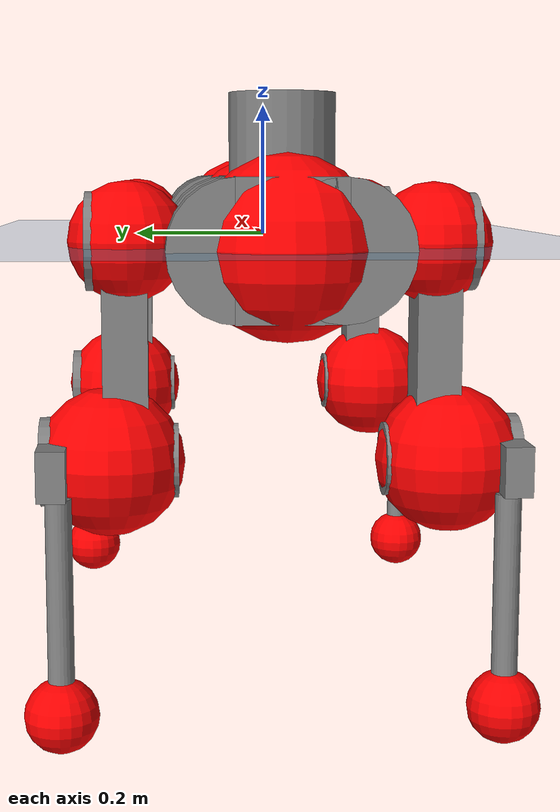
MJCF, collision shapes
<mujoco model="anymal_c">
  <compiler angle="radian" assetdir="assets" balanceinertia="true" inertiafromgeom="false"/>

  <option timestep="0.005" density="1.2" viscosity="2e-05"/>

  <size nkey="1"/>

  <visual>
    <quality shadowsize="8192"/>
    <map shadowclip="0.5"/>
  </visual>

  <default>
    <default class="/">
      <material specular="0" shininess="0.25"/>
      <geom contype="0" conaffinity="0" group="1" solref="-1000 -80"/>
      <site size="0.01 0.005 0.005" group="5"/>
      <general forcelimited="true" forcerange="-80 80" biastype="affine" gainprm="80" biasprm="0 -80 -2"/>
      <default class="anymal_c">
        <joint armature="0.01" damping="0.01" frictionloss="0.1"/>
        <default class="visual">
          <geom type="mesh" group="2"/>
          <default class="visual_zflip"/>
        </default>
        <default class="collision">
          <geom type="cylinder" group="3"/>
          <default class="foot">
            <geom size="0.03 0 0" type="sphere" condim="6" priority="1" friction="0.8 0.02 0.01" solimp="0.015 1 0.03"/>
          </default>
        </default>
      </default>
      <default class="reward_collision_sphere">
        <geom group="5" rgba="1 0 0 1"/>
      </default>
    </default>
  </default>

  <asset>
    <texture type="skybox" colorspace="auto" name="//unnamed_texture_0" builtin="gradient" rgb1="0.95 0.95 0.95" rgb2="0.95 0.95 0.95" width="100" height="600"/>
    <texture type="2d" colorspace="auto" name="texplane" builtin="checker" rgb1="0.345 0.575 0.748" rgb2="0.345 0.575 0.748" markrgb="1 1 1" width="512" height="512"/>
    <texture type="2d" colorspace="linear" name="base" file="base.png"/>
    <texture type="2d" colorspace="linear" name="top_shell" file="top_shell.png"/>
    <texture type="2d" colorspace="linear" name="bottom_shell" file="bottom_shell.png"/>
    <texture type="2d" colorspace="linear" name="remote" file="remote.png"/>
    <texture type="2d" colorspace="linear" name="hatch" file="hatch.png"/>
    <texture type="2d" colorspace="linear" name="handle" file="handle.png"/>
    <texture type="2d" colorspace="linear" name="face" file="face.png"/>
    <texture type="2d" colorspace="linear" name="battery" file="battery.png"/>
    <texture type="2d" colorspace="linear" name="lidar_cage" file="lidar_cage.png"/>
    <texture type="2d" colorspace="linear" name="depth_camera" file="depth_camera.png"/>
    <texture type="2d" colorspace="linear" name="wide_angle_camera" file="wide_angle_camera.png"/>
    <texture type="2d" colorspace="linear" name="lidar" file="lidar.png"/>
    <texture type="2d" colorspace="linear" name="drive" file="drive.png"/>
    <texture type="2d" colorspace="linear" name="hip_l" file="hip_l.png"/>
    <texture type="2d" colorspace="linear" name="shank_l" file="shank_l.png"/>
    <texture type="2d" colorspace="linear" name="foot" file="foot.png"/>
    <texture type="2d" colorspace="linear" name="thigh" file="thigh.png"/>
    <texture type="2d" colorspace="linear" name="shank_r" file="shank_r.png"/>
    <texture type="2d" colorspace="linear" name="hip_r" file="hip_r.png"/>
    <material name="MatPlane" class="/" texture="texplane" texuniform="true" texrepeat="2 2" specular="0.9" shininess="0.5"/>
    <material name="black_plastic" class="/" rgba="0.007 0.007 0.007 1"/>
    <material name="green" class="/" rgba="0.052 0.178 0.033 1"/>
    <material name="red" class="/" rgba="0.178 0.006 0.005 1"/>
    <material name="yellow" class="/" rgba="0.178 0.119 0.006 1"/>
    <material name="lwl" class="/" rgba="0.8 0.8 0.8 1"/>
    <material name="base" class="/" texture="base"/>
    <material name="top_shell" class="/" texture="top_shell"/>
    <material name="bottom_shell" class="/" texture="bottom_shell"/>
    <material name="hip_l" class="/" texture="hip_l"/>
    <material name="thigh" class="/" texture="thigh"/>
    <material name="shank_l" class="/" texture="shank_l"/>
    <material name="foot" class="/" texture="foot"/>
    <material name="hip_r" class="/" texture="hip_r"/>
    <material name="shank" class="/" texture="shank_r"/>
    <material name="hatch" class="/" texture="hatch"/>
    <material name="remote" class="/" texture="remote"/>
    <material name="handle" class="/" texture="handle"/>
    <material name="face" class="/" texture="face"/>
    <material name="depth_camera" class="/" texture="depth_camera"/>
    <material name="wide_angle_camera" class="/" texture="wide_angle_camera"/>
    <material name="battery" class="/" texture="battery"/>
    <material name="lidar_cage" class="/" texture="lidar_cage"/>
    <material name="lidar" class="/" texture="lidar"/>
    <material name="drive" class="/" texture="drive"/>
    <mesh name="base_0" class="/" file="base_0.obj"/>
    <mesh name="base_1" class="/" file="base_1.obj"/>
    <mesh name="base_2" class="/" file="base_2.obj"/>
    <mesh name="base_3" class="/" file="base_3.obj"/>
    <mesh name="base_4" class="/" file="base_4.obj"/>
    <mesh name="base_5" class="/" file="base_5.obj"/>
    <mesh name="top_shell" class="/" file="top_shell.obj"/>
    <mesh name="bottom_shell" class="/" file="bottom_shell.obj"/>
    <mesh name="remote" class="/" file="remote.obj"/>
    <mesh name="handle" class="/" file="handle.obj"/>
    <mesh name="face" class="/" file="face.obj"/>
    <mesh name="wide_angle_camera" class="/" file="wide_angle_camera.obj"/>
    <mesh name="depth_camera" class="/" file="depth_camera.obj"/>
    <mesh name="battery" class="/" file="battery.obj"/>
    <mesh name="lidar_cage" class="/" file="lidar_cage.obj"/>
    <mesh name="lidar" class="/" file="lidar.obj"/>
    <mesh name="drive" class="/" file="drive.obj"/>
    <mesh name="hip_l" class="/" file="hip_l.obj"/>
    <mesh name="thigh" class="/" file="thigh.obj"/>
    <mesh name="shank_l" class="/" file="shank_l.obj"/>
    <mesh name="foot" class="/" file="foot.obj"/>
    <mesh name="hip_r" class="/" file="hip_r.obj"/>
    <mesh name="hatch" class="/" file="hatch.obj"/>
    <mesh name="shank_r" class="/" file="shank_r.obj"/>
  </asset>

  <worldbody>
    <geom name="floor" class="/" size="100 100 0.125" type="plane" group="0" material="MatPlane"/>
    <light name="toplight_shadow" class="/" pos="0 0 5" dir="0.0990148 0.0990148 -0.990148" type="directional" ambient="0.04 0.04 0.04" diffuse="0.55 0.55 0.55" specular="0.12 0.12 0.12"/>
    <light name="toplight_fill" class="/" pos="0 0 5" dir="0.0990148 0.0990148 -0.990148" type="directional" castshadow="false" ambient="0.04 0.04 0.04" diffuse="0.3 0.3 0.3" specular="0.08 0.08 0.08"/>
    <body name="trunk" childclass="anymal_c" pos="-0.000174241 0.000877669 -2.9414e-05" quat="1 0.000136035 4.22826e-05 0.000294562">
      <inertial pos="0.00189318 0.000137008 0.0513074" quat="0.499916 0.499762 0.500263 0.50006" mass="19.8566" diaginertia="0.838516 0.437938 0.265225"/>
      <joint name="//unnamed_joint_0" type="free" armature="0" damping="0" frictionloss="0"/>
      <geom name="//unnamed_geom_1" class="visual" material="green" mesh="base_0"/>
      <geom name="//unnamed_geom_2" class="visual" material="yellow" mesh="base_1"/>
      <geom name="//unnamed_geom_3" class="visual" material="red" mesh="base_2"/>
      <geom name="//unnamed_geom_4" class="visual" material="black_plastic" mesh="base_3"/>
      <geom name="//unnamed_geom_5" class="visual" material="lwl" mesh="base_4"/>
      <geom name="//unnamed_geom_6" class="visual" material="base" mesh="base_5"/>
      <geom name="trunk_1" class="collision" size="0.293034 0.0707323 0.0909416" type="box"/>
      <geom name="trunk_2" class="collision" size="0.0909416 0.0732585" pos="0.229889 0.0652788 0" quat="0.707107 0 0.707107 0"/>
      <geom name="trunk_3" class="collision" size="0.0909416 0.0732585" pos="-0.229889 0.0652788 0" quat="0.707107 0 0.707107 0"/>
      <geom name="trunk_4" class="collision" size="0.0909416 0.0732585" pos="0.229889 -0.0652788 0" quat="0.707107 0 0.707107 0"/>
      <geom name="trunk_5" class="collision" size="0.0909416 0.0732585" pos="-0.229889 -0.0652788 0" quat="0.707107 0 0.707107 0"/>
      <geom name="//unnamed_geom_12" class="visual" material="top_shell" mesh="top_shell"/>
      <geom name="//unnamed_geom_13" class="visual" material="bottom_shell" mesh="bottom_shell"/>
      <geom name="//unnamed_geom_14" class="visual" material="remote" mesh="remote"/>
      <geom name="//unnamed_geom_15" class="visual" material="handle" mesh="handle"/>
      <geom name="//unnamed_geom_16" class="visual" pos="0.438111 0 0" quat="1 0 0 0" material="face" mesh="face"/>
      <geom name="trunk_6" class="collision" size="0.0555754 0.0707323 0.0909416" pos="0.496244 0 0" type="box"/>
      <geom name="//unnamed_geom_18" class="collision" size="0.0909416 0.0555754" pos="0.496244 0.0652788 0" quat="0.707107 0 0.707107 0"/>
      <geom name="//unnamed_geom_19" class="collision" size="0.0909416 0.0555754" pos="0.496244 -0.0652788 0" quat="0.707107 0 0.707107 0"/>
      <geom name="//unnamed_geom_20" class="visual" pos="0.487946 0 -0.0303078" quat="0.965926 0 0.258819 0" material="depth_camera" mesh="depth_camera"/>
      <geom name="//unnamed_geom_21" class="visual" pos="0.542222 0 0.0155968" material="wide_angle_camera" mesh="wide_angle_camera"/>
      <geom name="//unnamed_geom_22" class="visual_zflip" pos="-0.438111 0 0" quat="0 0 0 1" material="face" mesh="face"/>
      <geom name="trunk_7" class="collision" size="0.0555754 0.0707323 0.0909416" pos="-0.496244 0 0" quat="0 0 0 1" type="box"/>
      <geom name="//unnamed_geom_24" class="collision" size="0.0909416 0.0555754" pos="-0.496244 -0.0652788 0" quat="0 -0.707107 0 0.707107"/>
      <geom name="//unnamed_geom_25" class="collision" size="0.0909416 0.0555754" pos="-0.496244 0.0652788 0" quat="0 -0.707107 0 0.707107"/>
      <geom name="//unnamed_geom_26" class="visual" pos="-0.487946 0 -0.0303078" quat="0 -0.258819 0 0.965926" material="depth_camera" mesh="depth_camera"/>
      <geom name="//unnamed_geom_27" class="visual_zflip" pos="-0.542222 0 0.0155968" quat="0 0 0 1" material="wide_angle_camera" mesh="wide_angle_camera"/>
      <geom name="//unnamed_geom_28" class="visual" material="battery" mesh="battery"/>
      <geom name="//unnamed_geom_29" class="visual" pos="0 0.06967 0.030381" quat="0.683013 -0.183013 0.183013 0.683013" material="depth_camera" mesh="depth_camera"/>
      <geom name="//unnamed_geom_30" class="visual" pos="0 -0.06967 0.030381" quat="0.683013 0.183013 0.183013 -0.683013" material="depth_camera" mesh="depth_camera"/>
      <geom name="//unnamed_geom_31" class="visual" pos="-0.384735 0 0.0765773" quat="1 0 0 0" material="lidar_cage" mesh="lidar_cage"/>
      <geom name="trunk_8" class="collision" size="0.0707323 0.0606277" pos="-0.384735 0 0.139089"/>
      <geom name="//unnamed_geom_33" class="visual" pos="-0.384735 -4.88769e-05 0.148154" quat="0.707107 0 0 -0.707107" material="lidar" mesh="lidar"/>
      <geom name="//unnamed_geom_34" class="visual" pos="0.316983 0.0970245 -1.88568e-09" quat="0.258819 0.965926 0 0" material="drive" mesh="drive"/>
      <geom name="//unnamed_geom_35" class="visual" pos="0.316983 -0.0970245 1.88568e-09" quat="0.258819 -0.965926 0 0" material="drive" mesh="drive"/>
      <geom name="//unnamed_geom_36" class="visual" pos="-0.316983 0.0970245 1.88568e-09" quat="0 0 0.965926 -0.258819" material="drive" mesh="drive"/>
      <geom name="//unnamed_geom_37" class="visual" pos="-0.316983 -0.0970245 -1.88568e-09" quat="0 0 -0.965926 -0.258819" material="drive" mesh="drive"/>
      <geom name="//unnamed_geom_38" class="visual" pos="0.122608 0 0.0760564" quat="1 0 0 0" material="hatch" mesh="hatch"/>
      <geom name="//unnamed_geom_39" class="reward_collision_sphere" size="0.121255"/>
      <geom name="//unnamed_geom_40" class="reward_collision_sphere" size="0.121255" pos="0.475633 0 0"/>
      <geom name="//unnamed_geom_41" class="reward_collision_sphere" size="0.121255" pos="-0.475633 0 0"/>
      <site name="imu" pos="0.263773 0.00862845 0.0458355" size="0.0101046"/>
      <camera name="track" pos="0 -1.86511 0" quat="0.707107 0.707107 0 0" mode="trackcom"/>
      <camera name="ego_camera" pos="0.475633 0 -0.0416747" quat="-0.5 -0.5 0.5 0.5"/>
      <body name="LF_HIP" pos="0.317628 0.0980479 -0.000804838" quat="0.258807 0.965929 0.000131393 0.000120117">
        <inertial pos="0.059491 -0.0134671 -0.00791169" quat="-0.128686 0.709859 -0.135128 0.679176" mass="2.8581" diaginertia="0.00767743 0.0034541 0.0039865"/>
        <joint name="LF_HAA" pos="0 0 0" axis="0.999991 0.00328364 0.00273737" range="-0.714926 0.497092" armature="0.00972053" damping="0.0152659" frictionloss="0.100422"/>
        <geom name="//unnamed_geom_42" class="visual" pos="0 -0.000110926 1.82195e-05" quat="0.258819 -0.965926 0 0" material="hip_l" mesh="hip_l"/>
        <geom name="//unnamed_geom_43" class="visual" pos="0.0633121 -0.0751169 -0.0441773" quat="0.183013 -0.683013 0.683013 0.183013" material="drive" mesh="drive"/>
        <geom name="//unnamed_geom_44" class="collision" size="0.0505231 0.0707323" pos="0.0633121 -0.0111532 -0.0071941" quat="-0.353553 -0.612372 0.612372 -0.353553"/>
        <body name="LF_THIGH" pos="0.0636554 -0.0674913 -0.0435327" quat="0.183088 -0.682994 0.683002 0.183046">
          <inertial pos="0.0330098 8.25104e-05 -0.256191" quat="0.993314 -0.00472385 -0.0798224 0.0832645" mass="3.14281" diaginertia="0.0399816 0.0211726 0.00512362"/>
          <joint name="LF_HFE" pos="0 0 0" axis="0.999997 0.000888937 0.00246704" stiffness="0.00344425" range="-3.13215 3.12251" armature="0.00969565" damping="0.00589595" frictionloss="0.0986577"/>
          <geom name="//unnamed_geom_45" class="visual" pos="0.00247525 3.90041e-06 0" quat="0.707107 0 0 -0.707107" material="thigh" mesh="thigh"/>
          <geom name="//unnamed_geom_46" class="collision" size="0.06568 0.0404185" pos="0.0422785 0 0" quat="0.5 0.5 -0.5 -0.5"/>
          <geom name="//unnamed_geom_47" class="collision" size="0.0378923 0.0303139 0.142792" pos="0.0317089 0 -0.147231" quat="0.707107 0 0 -0.707107" type="box"/>
          <geom name="//unnamed_geom_48" class="visual" pos="0.106013 0 -0.296932" quat="1 0 0 0" material="drive" mesh="drive"/>
          <geom name="//unnamed_geom_49" class="collision" size="0.0505231 0.0707323" pos="0.032026 0 -0.296932" quat="0.707107 0 0.707107 0"/>
          <geom name="//unnamed_geom_50" class="reward_collision_sphere" size="0.080837" pos="0.0264241 0 0"/>
          <body name="LF_SHANK" pos="0.106137 -0.00025177 -0.297034" quat="1 -0.000394011 -0.0001512 0.000235371">
            <inertial pos="0.00496587 -0.0577076 -0.0832583" quat="0.993027 -0.115457 -0.00118733 -0.0237948" mass="0.610162" diaginertia="0.0133425 0.00646817 0.00138823"/>
            <joint name="LF_KFE" pos="0 0 0" axis="0.999997 -0.0016507 -0.00165056" stiffness="0.000103774" range="-3.13412 3.14977" armature="0.0104882" damping="0.00962642" frictionloss="0.101279"/>
            <geom name="//unnamed_geom_51" class="visual" pos="0.000807124 0.00430363 0" quat="0.707107 0 0 -0.707107" material="shank_l" mesh="shank_l"/>
            <geom name="LF_kfe_act" class="collision" size="0.0606277 0.0202092" pos="0.0211393 0 0" quat="0.5 0.5 -0.5 -0.5"/>
            <geom name="//unnamed_geom_53" class="collision" size="0.0581006 0.0341031 0.0191988" pos="0.0211393 -0.0536209 0" quat="0.5 0.5 -0.5 -0.5" type="box"/>
            <geom name="//unnamed_geom_54" class="visual" pos="0.0137932 -0.0806313 -0.35212" quat="0.382683 0 0 -0.92388" material="foot" mesh="foot"/>
            <geom name="LF_calf" class="collision" size="0.0176831 0.14273" pos="0.0137934 -0.0820182 -0.17606" quat="0.707107 0 0 -0.707107"/>
            <geom name="LF_foot" class="foot" size="0.0289358" pos="0.0137934 -0.0820182 -0.328678" quat="0.707107 0 0 -0.707107"/>
            <geom name="//unnamed_geom_57" class="reward_collision_sphere" size="0.101046" pos="-0.0528482 0 0"/>
            <geom name="//unnamed_geom_58" class="reward_collision_sphere" size="0.0505231" pos="0.0137934 -0.0820182 -0.328678"/>
            <site name="LF_foot" class="foot" pos="0.0137934 -0.0820182 -0.328678" quat="0.707107 0 0 -0.707107" size="0.0101046"/>
          </body>
        </body>
      </body>
      <body name="RF_HIP" pos="0.317447 -0.0976474 -0.000365872" quat="0.258805 -0.96593 7.95787e-05 -1.79151e-07">
        <inertial pos="0.0593504 0.0150033 -0.0087466" quat="0.135444 0.678931 0.127804 0.710193" mass="2.869" diaginertia="0.00763717 0.0034135 0.00403752"/>
        <joint name="RF_HAA" pos="0 0 0" axis="0.999999 -0.000430652 0.00162806" stiffness="0.00041009" range="-0.507427 0.726203" armature="0.00995554" damping="0.00993727" frictionloss="0.102284"/>
        <geom name="//unnamed_geom_59" class="visual" pos="0 0.000110925 1.82194e-05" quat="0.258819 0.965926 0 0" material="hip_r" mesh="hip_r"/>
        <geom name="//unnamed_geom_60" class="visual" pos="0.0633121 0.0751169 -0.0441773" quat="0.183013 0.683013 0.683013 -0.183013" material="drive" mesh="drive"/>
        <geom name="//unnamed_geom_61" class="collision" size="0.0505231 0.0707323" pos="0.0633121 0.0111532 -0.0071941" quat="-0.353553 0.612372 0.612372 0.353553"/>
        <body name="RF_THIGH" pos="0.0636808 0.0673817 -0.0445504" quat="0.18314 0.682927 0.683066 -0.183006">
          <inertial pos="0.0335118 -0.00043849 -0.256297" quat="0.992779 -0.00492196 -0.0807643 0.0885542" mass="3.13921" diaginertia="0.0397964 0.0210908 0.00516921"/>
          <joint name="RF_HFE" pos="0 0 0" axis="1 0.000417791 0.000226286" stiffness="0.00701132" range="-3.15042 3.13496" armature="0.0101273" damping="0.00990237" frictionloss="0.100298"/>
          <geom name="//unnamed_geom_62" class="visual" pos="0.00247525 3.90041e-06 0" quat="0.707107 0 0 -0.707107" material="thigh" mesh="thigh"/>
          <geom name="//unnamed_geom_63" class="collision" size="0.06568 0.0404185" pos="0.0422785 0 0" quat="0.5 0.5 0.5 0.5"/>
          <geom name="//unnamed_geom_64" class="collision" size="0.0378923 0.0303139 0.142792" pos="0.0317089 0 -0.147231" quat="0.707107 0 0 0.707107" type="box"/>
          <geom name="//unnamed_geom_65" class="visual" pos="0.106013 0 -0.296932" quat="1 0 0 0" material="drive" mesh="drive"/>
          <geom name="//unnamed_geom_66" class="collision" size="0.0505231 0.0707323" pos="0.032026 0 -0.296932" quat="0.707107 0 0.707107 0"/>
          <geom name="//unnamed_geom_67" class="reward_collision_sphere" size="0.080837" pos="0.0264241 0 0"/>
          <body name="RF_SHANK" pos="0.104841 0.000369023 -0.29733" quat="1 -2.74801e-06 -2.0985e-05 3.86162e-05">
            <inertial pos="0.00528971 0.0570684 -0.0843524" quat="0.992924 0.116017 -0.00113226 0.0253179" mass="0.606123" diaginertia="0.0132257 0.00653582 0.00136281"/>
            <joint name="RF_KFE" pos="0 0 0" axis="0.999999 -0.00145815 -0.000643774" range="-3.1302 3.14125" armature="0.00998464" damping="0.00589408" frictionloss="0.103516"/>
            <geom name="//unnamed_geom_68" class="visual" pos="0.00080712 -0.00430362 0" quat="0.707107 0 0 0.707107" material="shank" mesh="shank_r"/>
            <geom name="RF_kfe_act" class="collision" size="0.0606277 0.0202092" pos="0.0211393 0 0" quat="0.5 0.5 0.5 0.5"/>
            <geom name="//unnamed_geom_70" class="collision" size="0.0581006 0.0341031 0.0191988" pos="0.0211393 0.0536209 0" quat="0.5 0.5 0.5 0.5" type="box"/>
            <geom name="//unnamed_geom_71" class="visual" pos="0.0137936 0.0806313 -0.35212" quat="0.382683 0 0 0.92388" material="foot" mesh="foot"/>
            <geom name="RF_calf" class="collision" size="0.0176831 0.14273" pos="0.0137934 0.0820182 -0.17606" quat="0.707107 0 0 0.707107"/>
            <geom name="RF_foot" class="foot" size="0.0297778" pos="0.0137934 0.0820182 -0.328678" quat="0.707107 0 0 0.707107"/>
            <geom name="//unnamed_geom_74" class="reward_collision_sphere" size="0.101046" pos="-0.0528482 0 0"/>
            <geom name="//unnamed_geom_75" class="reward_collision_sphere" size="0.0505231" pos="0.0137934 0.0820182 -0.328678"/>
            <site name="RF_foot" class="foot" pos="0.0137934 0.0820182 -0.328678" quat="0.707107 0 0 0.707107" size="0.0101046"/>
          </body>
        </body>
      </body>
      <body name="LH_HIP" pos="-0.316504 0.0978157 -0.000295435" quat="-0.000212088 -3.5798e-05 0.966048 -0.258364">
        <inertial pos="0.0602587 0.0136165 -0.00898021" quat="0.135233 0.679074 0.127986 0.710064" mass="2.88112" diaginertia="0.0077153 0.00342922 0.00400963"/>
        <joint name="LH_HAA" pos="0 0 0" axis="1 0.000199981 0.000132394" range="-0.500539 0.722542" armature="0.0100821" damping="0.00868568" frictionloss="0.101436"/>
        <geom name="//unnamed_geom_76" class="visual" pos="0 0.000110925 1.82194e-05" quat="-0.258819 -0.965926 0 0" material="hip_r" mesh="hip_r"/>
        <geom name="//unnamed_geom_77" class="visual" pos="0.0633121 0.0751169 -0.0441773" quat="0.183013 0.683013 0.683013 -0.183013" material="drive" mesh="drive"/>
        <geom name="//unnamed_geom_78" class="collision" size="0.0505231 0.0707323" pos="0.0633121 0.0111532 -0.0071941" quat="-0.353553 0.612372 0.612372 0.353553"/>
        <body name="LH_THIGH" pos="0.0625481 0.0671723 -0.0449114" quat="0.182992 0.683181 0.682857 -0.182985">
          <inertial pos="0.0324559 -0.000304033 -0.255978" quat="0.992819 -0.00328343 -0.0806173 0.0883156" mass="3.18701" diaginertia="0.0401026 0.0212619 0.00515261"/>
          <joint name="LH_HFE" pos="0 0 0" axis="0.999997 -0.00210611 0.000818754" range="-3.14347 3.1367" armature="0.0105032" damping="0.00625514" frictionloss="0.0999261"/>
          <geom name="//unnamed_geom_79" class="visual" pos="0.00247525 3.90041e-06 0" quat="0.707107 0 0 -0.707107" material="thigh" mesh="thigh"/>
          <geom name="//unnamed_geom_80" class="collision" size="0.06568 0.0404185" pos="0.0422785 0 0" quat="0.5 0.5 -0.5 -0.5"/>
          <geom name="//unnamed_geom_81" class="collision" size="0.0378923 0.0303139 0.142792" pos="0.0317089 0 -0.147231" quat="0.707107 0 0 -0.707107" type="box"/>
          <geom name="//unnamed_geom_82" class="visual" pos="0.106013 0 -0.296932" quat="1 0 0 0" material="drive" mesh="drive"/>
          <geom name="//unnamed_geom_83" class="collision" size="0.0505231 0.0707323" pos="0.032026 0 -0.296932" quat="0.707107 0 0.707107 0"/>
          <geom name="//unnamed_geom_84" class="reward_collision_sphere" size="0.080837" pos="0.0264241 0 0"/>
          <body name="LH_SHANK" pos="0.106127 -0.000535926 -0.297268" quat="1 0.000106001 -3.79275e-05 -6.8842e-05">
            <inertial pos="0.00579339 0.0570088 -0.0847468" quat="0.992936 0.115865 -0.001612 0.0255077" mass="0.604837" diaginertia="0.013416 0.00651358 0.00137547"/>
            <joint name="LH_KFE" pos="0 0 0" axis="0.999999 0.000432857 0.00136113" stiffness="0.000229126" range="-3.15394 3.13924" armature="0.0100749" damping="0.00707752" frictionloss="0.100143"/>
            <geom name="//unnamed_geom_85" class="visual" pos="0.00080712 -0.00430362 0" quat="-0.707107 0 0 -0.707107" material="shank" mesh="shank_r"/>
            <geom name="LH_kfe_act" class="collision" size="0.0606277 0.0202092" pos="0.0211393 0 0" quat="0.5 0.5 -0.5 -0.5"/>
            <geom name="//unnamed_geom_87" class="collision" size="0.0581006 0.0341031 0.0191988" pos="0.0211393 0.0536209 0" quat="0.5 0.5 -0.5 -0.5" type="box"/>
            <geom name="//unnamed_geom_88" class="visual" pos="0.0137936 0.0806313 -0.35212" quat="-0.382683 0 0 -0.92388" material="foot" mesh="foot"/>
            <geom name="LH_calf" class="collision" size="0.0176831 0.14273" pos="0.0137934 0.0820182 -0.17606" quat="0.707107 0 0 -0.707107"/>
            <geom name="LH_foot" class="foot" size="0.0304096" pos="0.0137934 0.0820182 -0.328678" quat="0.707107 0 0 -0.707107"/>
            <geom name="//unnamed_geom_91" class="reward_collision_sphere" size="0.101046" pos="-0.0528482 0 0"/>
            <geom name="//unnamed_geom_92" class="reward_collision_sphere" size="0.0505231" pos="0.0137934 0.0820182 -0.328678"/>
            <site name="LH_foot" class="foot" pos="0.0137934 0.0820182 -0.328678" quat="0.707107 0 0 -0.707107" size="0.0101046"/>
          </body>
        </body>
      </body>
      <body name="RH_HIP" pos="-0.316457 -0.0975684 -0.000290793" quat="-0.000137464 -6.21281e-05 -0.966027 -0.258441">
        <inertial pos="0.0599044 -0.0150851 -0.0089048" quat="-0.128207 0.710372 -0.134914 0.678773" mass="2.86373" diaginertia="0.00763291 0.0034229 0.00402994"/>
        <joint name="RH_HAA" pos="0 0 0" axis="1 -0.000329065 0.00064183" range="-0.721436 0.493839" armature="0.0101369" damping="0.0143986" frictionloss="0.103143"/>
        <geom name="//unnamed_geom_93" class="visual" pos="0 -0.000110926 1.82195e-05" quat="-0.258819 0.965926 0 0" material="hip_l" mesh="hip_l"/>
        <geom name="//unnamed_geom_94" class="visual" pos="0.0633121 -0.0751169 -0.0441773" quat="-0.183013 0.683013 -0.683013 -0.183013" material="drive" mesh="drive"/>
        <geom name="//unnamed_geom_95" class="collision" size="0.0505231 0.0707323" pos="0.0633121 -0.0111532 -0.0071941" quat="0.353553 0.612372 -0.612372 0.353553"/>
        <body name="RH_THIGH" pos="0.0628184 -0.0680613 -0.0436043" quat="-0.183013 0.683013 -0.683012 -0.183013">
          <inertial pos="0.0328436 0.000583964 -0.256052" quat="0.993227 -0.00520899 -0.0799113 0.0841853" mass="3.18003" diaginertia="0.0398934 0.0210845 0.00514143"/>
          <joint name="RH_HFE" pos="0 0 0" axis="0.999998 0.000773829 0.00165722" range="-3.13688 3.12589" armature="0.00976865" damping="0.00560365" frictionloss="0.0986388"/>
          <geom name="//unnamed_geom_96" class="visual" pos="0.00247525 3.90041e-06 0" quat="0.707107 0 0 -0.707107" material="thigh" mesh="thigh"/>
          <geom name="//unnamed_geom_97" class="collision" size="0.06568 0.0404185" pos="0.0422785 0 0" quat="0.5 0.5 0.5 0.5"/>
          <geom name="//unnamed_geom_98" class="collision" size="0.0378923 0.0303139 0.142792" pos="0.0317089 0 -0.147231" quat="0.707107 0 0 0.707107" type="box"/>
          <geom name="//unnamed_geom_99" class="visual" pos="0.106013 0 -0.296932" quat="1 0 0 0" material="drive" mesh="drive"/>
          <geom name="//unnamed_geom_100" class="collision" size="0.0505231 0.0707323" pos="0.032026 0 -0.296932" quat="0.707107 0 0.707107 0"/>
          <geom name="//unnamed_geom_101" class="reward_collision_sphere" size="0.080837" pos="0.0264241 0 0"/>
          <body name="RH_SHANK" pos="0.104987 -0.000584791 -0.296607" quat="1 2.67008e-05 0.000172842 -4.87445e-05">
            <inertial pos="0.00651809 -0.0570635 -0.0847633" quat="0.992937 -0.115859 -0.000927401 -0.0255168" mass="0.608503" diaginertia="0.0132425 0.00655991 0.00135364"/>
            <joint name="RH_KFE" pos="0 0 0" axis="0.999987 0.00429834 0.00282734" range="-3.14287 3.14884" armature="0.0105194" damping="0.0100536" frictionloss="0.103423"/>
            <geom name="//unnamed_geom_102" class="visual" pos="0.000807124 0.00430363 0" quat="0.707107 0 0 -0.707107" material="shank_l" mesh="shank_l"/>
            <geom name="RH_kfe_act" class="collision" size="0.0606277 0.0202092" pos="0.0211393 0 0" quat="0.5 0.5 0.5 0.5"/>
            <geom name="//unnamed_geom_104" class="collision" size="0.0581006 0.0341031 0.0191988" pos="0.0211393 -0.0536209 0" quat="0.5 0.5 0.5 0.5" type="box"/>
            <geom name="//unnamed_geom_105" class="visual" pos="0.0137932 -0.0806313 -0.35212" quat="0.382683 0 0 -0.92388" material="foot" mesh="foot"/>
            <geom name="RH_calf" class="collision" size="0.0176831 0.14273" pos="0.0137934 -0.0820182 -0.17606" quat="0.707107 0 0 0.707107"/>
            <geom name="RH_foot" class="foot" size="0.0278915" pos="0.0137934 -0.0820182 -0.328678" quat="0.707107 0 0 0.707107"/>
            <geom name="//unnamed_geom_108" class="reward_collision_sphere" size="0.101046" pos="-0.0528482 0 0"/>
            <geom name="//unnamed_geom_109" class="reward_collision_sphere" size="0.0505231" pos="0.0137934 -0.0820182 -0.328678"/>
            <site name="RH_foot" class="foot" pos="0.0137934 -0.0820182 -0.328678" quat="0.707107 0 0 0.707107" size="0.0101046"/>
          </body>
        </body>
      </body>
    </body>
  </worldbody>

  <contact>
    <pair class="/" geom1="floor" geom2="LF_foot" name="//unnamed_contact_0"/>
    <pair class="/" geom1="floor" geom2="RF_foot" name="//unnamed_contact_1"/>
    <pair class="/" geom1="floor" geom2="LH_foot" name="//unnamed_contact_2"/>
    <pair class="/" geom1="floor" geom2="RH_foot" name="//unnamed_contact_3"/>
  </contact>

  <actuator>
    <general name="LF_HAA" class="/" joint="LF_HAA" forcerange="-81.1534 81.1534" gainprm="81.1888" biasprm="0 -81.1888 -1.9718"/>
    <general name="LF_HFE" class="/" joint="LF_HFE" forcerange="-82.2244 82.2244" gainprm="81.1888" biasprm="0 -81.1888 -1.9718"/>
    <general name="LF_KFE" class="/" joint="LF_KFE" forcerange="-81.5613 81.5613" gainprm="81.1888" biasprm="0 -81.1888 -1.9718"/>
    <general name="RF_HAA" class="/" joint="RF_HAA" forcerange="-83.5504 83.5504" gainprm="81.1888" biasprm="0 -81.1888 -1.9718"/>
    <general name="RF_HFE" class="/" joint="RF_HFE" forcerange="-82.0043 82.0043" gainprm="81.1888" biasprm="0 -81.1888 -1.9718"/>
    <general name="RF_KFE" class="/" joint="RF_KFE" forcerange="-83.5362 83.5362" gainprm="81.1888" biasprm="0 -81.1888 -1.9718"/>
    <general name="LH_HAA" class="/" joint="LH_HAA" forcerange="-81.9778 81.9778" gainprm="81.1888" biasprm="0 -81.1888 -1.9718"/>
    <general name="LH_HFE" class="/" joint="LH_HFE" forcerange="-82.0515 82.0515" gainprm="81.1888" biasprm="0 -81.1888 -1.9718"/>
    <general name="LH_KFE" class="/" joint="LH_KFE" forcerange="-80.5971 80.5971" gainprm="81.1888" biasprm="0 -81.1888 -1.9718"/>
    <general name="RH_HAA" class="/" joint="RH_HAA" forcerange="-81.5679 81.5679" gainprm="81.1888" biasprm="0 -81.1888 -1.9718"/>
    <general name="RH_HFE" class="/" joint="RH_HFE" forcerange="-79.8385 79.8385" gainprm="81.1888" biasprm="0 -81.1888 -1.9718"/>
    <general name="RH_KFE" class="/" joint="RH_KFE" forcerange="-80.6376 80.6376" gainprm="81.1888" biasprm="0 -81.1888 -1.9718"/>
  </actuator>

  <sensor>
    <gyro site="imu" name="imu_angular_velocity"/>
    <velocimeter site="imu" name="imu_linear_velocity"/>
    <framelinvel objtype="site" objname="LF_foot" name="LF_foot_global_linear_velocity"/>
    <framelinvel objtype="site" objname="RF_foot" name="RF_foot_global_linear_velocity"/>
    <framelinvel objtype="site" objname="LH_foot" name="LH_foot_global_linear_velocity"/>
    <framelinvel objtype="site" objname="RH_foot" name="RH_foot_global_linear_velocity"/>
  </sensor>

  <keyframe>
    <key name="home" qpos="0 0 0.55 1 0 0 0 0 0.4 -0.8 0 -0.4 0.8 0 -0.4 0.8 0 0.4 -0.8"/>
  </keyframe>
</mujoco>
